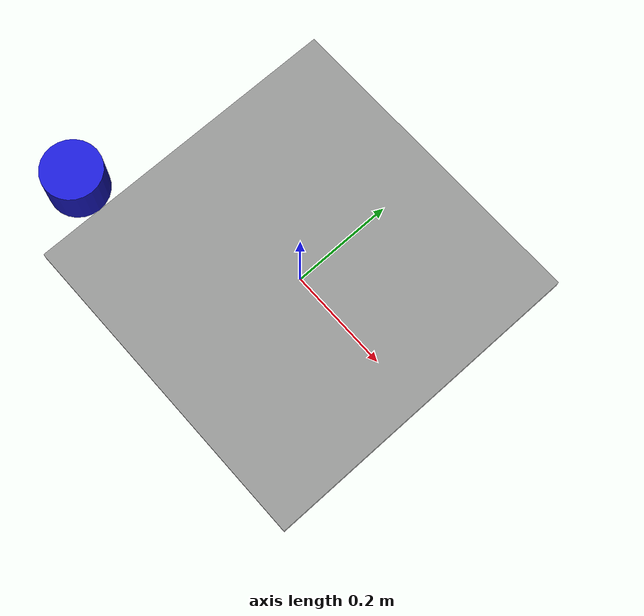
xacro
<?xml version="1.0"?>
<robot name="gb2026_r2"
    xmlns:xacro="http://www.ros.org/wiki/xacro">

    <xacro:property name="base_length" value="0.625"/>
    <xacro:property name="base_width" value="0.625"/>
    <xacro:property name="base_height" value="0.02"/>

    <xacro:property name="ground_clearance" value="0.042"/>

    <xacro:property name="livox_x_offset" value="-0.134"/>
    <xacro:property name="livox_y_offset" value="-0.2524"/>
    <xacro:property name="livox_z_offset" value="0.5775"/>

    <link name="base_footprint"/>

    <link name="base_link">
        <visual>
            <origin xyz="0 0 0" rpy="0 0 0"/>
            <geometry>
                <box size="${base_length} ${base_width} ${base_height}"/>
            </geometry>
            <material name="gray">
                <color rgba="0.5 0.5 0.5 0.8"/>
            </material>
        </visual>
        <collision>
            <origin xyz="0 0 0" rpy="0 0 0"/>
            <geometry>
                <box size="${base_length} ${base_width} ${base_height}"/>
            </geometry>
        </collision>
    </link>

    <joint name="base_footprint_to_base_link" type="fixed">
        <parent link="base_footprint"/>
        <child link="base_link"/>
        <origin xyz="0 0 ${ground_clearance + base_height/2.0}" rpy="0 0 0"/>
    </joint>

    <link name="livox_frame">
        <visual>
            <origin xyz="0 0 0" rpy="0 0 0"/>
            <geometry>
                <cylinder radius="0.04" length="0.06"/>
            </geometry>
            <material name="blue">
                <color rgba="0.1 0.1 0.8 1.0"/>
            </material>
        </visual>
    </link>

    <joint name="base_link_to_livox" type="fixed">
        <parent link="base_link"/>
        <child link="livox_frame"/>
        <origin xyz="${livox_x_offset} ${livox_y_offset} ${livox_z_offset}" rpy="0 0 0"/>
    </joint>

    <link name="imu_link">
        <visual>
            <geometry>
                <box size="0.01 0.01 0.01"/>
            </geometry>
            <material name="red">
                <color rgba="0.8 0.1 0.1 1.0"/>
            </material>
        </visual>
    </link>

    <joint name="livox_to_imu" type="fixed">
        <parent link="livox_frame"/>
        <child link="imu_link"/>
        <origin xyz="0.011 0.02329 -0.04412" rpy="0 0 0"/>
    </joint>

</robot>
